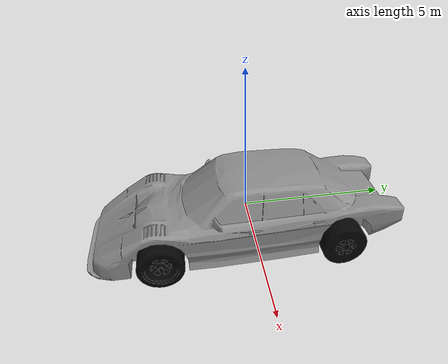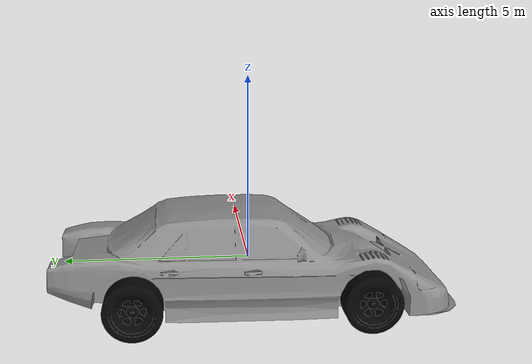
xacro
<?xml version="1.0"?>
<robot xmlns:xacro="http://ros.org/wiki/xacro" name="car">

  <!-- ============== PARAMETRI ============== -->
  <!-- Percorsi mesh (modifica questi) -->
  <xacro:property name="pkg_share" value="$(find msauber)"/>
  <xacro:property name="body_mesh"  value="${pkg_share}/description/meshes/msauber_body.stl"/>
  <xacro:property name="wheel_mesh" value="${pkg_share}/description/meshes/msauber_wheeel.stl"/>

  <!-- Scale mesh (se serve) -->
  <xacro:property name="body_scale"  value="1 1 1"/>
  <xacro:property name="wheel_scale" value="1 1 1"/>

  <!-- Geometria base (modifica questi) -->
  <!-- wheelbase = distanza tra asse anteriore e posteriore -->
  <xacro:property name="wheelbase" value="6.2"/>
  <!-- track = distanza tra ruota sinistra e destra -->
  <xacro:property name="track" value="3.5"/>
  <!-- quota centro ruota (rispetto al base_link) -->
  <xacro:property name="wheel_z" value="-0.7"/>

  <!-- opzionale: massa (placeholder) -->
  <xacro:property name="body_mass"  value="500"/>
  <xacro:property name="wheel_mass" value="25"/>

  <!-- Materiali base -->
  <material name="body_gray">
    <color rgba="0.55 0.55 0.55 1"/>
  </material>
  <material name="wheel_black">
    <color rgba="0.02 0.02 0.02 1"/>
  </material>

  <!-- ============== LINK PRINCIPALE ============== -->
  <link name="base_link">
    <visual>
      <origin xyz="0 0 0" rpy="0 0 0"/>
      <geometry>
        <mesh filename="${body_mesh}" scale="${body_scale}"/>
      </geometry>
      <material name="body_gray"/>
    </visual>

    <!-- collision: puoi usare la mesh o una shape semplice -->
    <collision>
      <origin xyz="0 0 0" rpy="0 0 0"/>
      <geometry>
        <mesh filename="${body_mesh}" scale="${body_scale}"/>
      </geometry>
    </collision>

    <!-- inertial placeholder (meglio sostituirlo con valori reali) -->
    <inertial>
      <origin xyz="0 0 0" rpy="0 0 0"/>
      <mass value="${body_mass}"/>
      <inertia ixx="0.10" ixy="0.0" ixz="0.0" iyy="0.10" iyz="0.0" izz="0.10"/>
    </inertial>
  </link>

  <!-- ============== MACRO RUOTA (link + visual/collision/inertial) ============== -->
  <xacro:macro name="wheel_link" params="name">
    <link name="${name}">
      <visual>
        <origin xyz="0 0 0" rpy="0 0 0"/>
        <geometry>
          <mesh filename="${wheel_mesh}" scale="${wheel_scale}"/>
        </geometry>
        <material name="wheel_black"/>
      </visual>

      <collision>
        <origin xyz="0 0 0" rpy="0 0 0"/>
        <geometry>
          <mesh filename="${wheel_mesh}" scale="${wheel_scale}"/>
        </geometry>
      </collision>

      <inertial>
        <origin xyz="0 0 0" rpy="0 0 0"/>
        <mass value="${wheel_mass}"/>
        <inertia ixx="0.001" ixy="0.0" ixz="0.0" iyy="0.001" iyz="0.0" izz="0.001"/>
      </inertial>
    </link>
  </xacro:macro>

  <!-- ============== RUOTE POSTERIORI (solo spin) ============== -->
  <xacro:wheel_link name="rear_right_wheel"/>
  <joint name="rear_right_wheel_spin" type="continuous">
    <parent link="base_link"/>
    <child link="rear_right_wheel"/>
    <!-- centro ruota: x=-wheelbase/2, y=+track/2 -->
    <origin xyz="${-track/2} ${ wheelbase/2} ${wheel_z}" rpy="0 0 3.14"/>
    <!-- asse spin: cambia se il tuo modello ruota su un altro asse -->
    <axis xyz="1 0 0"/>
  </joint>

  <xacro:wheel_link name="rear_left_wheel"/>
  <joint name="rear_left_wheel_spin" type="continuous">
    <parent link="base_link"/>
    <child link="rear_left_wheel"/>
    <origin xyz="${ track/2} ${ wheelbase/2} ${wheel_z}" rpy="0 0 3.14"/>
    <axis xyz="1 0 0"/>
  </joint>

  <!-- ============== RUOTE ANTERIORI (sterzo + spin) ============== -->
  <!-- Link “intermedio” per lo sterzo: aggiungo un'inerzia minima così Gazebo non scarta il link -->
  <link name="front_right_steer_link">
    <inertial>
      <origin xyz="0 0 0" rpy="0 0 0"/>
      <mass value="0.001"/>
      <inertia ixx="1e-5" ixy="0" ixz="0" iyy="1e-5" iyz="0" izz="1e-5"/>
    </inertial>
  </link>
  <joint name="front_right_steer" type="revolute">
    <parent link="base_link"/>
    <child link="front_right_steer_link"/>
    <!-- centro ruota: x=+wheelbase/2, y=+track/2 -->
    <origin xyz="${-track/2} ${-wheelbase/2} ${wheel_z}" rpy="0 0 3.14"/>
    <!-- sterzo attorno a Z (come hai chiesto) -->
    <axis xyz="0 0 1"/>
    <!-- limiti sterzo (modifica a piacere) -->
    <limit lower="-0.7" upper="0.7" effort="5" velocity="3"/>
  </joint>

  <xacro:wheel_link name="front_right_wheel"/>
  <joint name="front_right_wheel_spin" type="continuous">
    <parent link="front_right_steer_link"/>
    <child link="front_right_wheel"/>
    <!-- qui l’origine è 0 perché il pivot è già nel centro ruota -->
    <origin xyz="0 0 0" rpy="0 0 0"/>
    <axis xyz="1 0 0"/>
  </joint>

  <link name="front_left_steer_link">
    <inertial>
      <origin xyz="0 0 0" rpy="0 0 0"/>
      <mass value="0.001"/>
      <inertia ixx="1e-5" ixy="0" ixz="0" iyy="1e-5" iyz="0" izz="1e-5"/>
    </inertial>
  </link>
  <joint name="front_left_steer" type="revolute">
    <parent link="base_link"/>
    <child link="front_left_steer_link"/>
    <origin xyz="${ track/2} ${-wheelbase/2} ${wheel_z}" rpy="0 0 0"/>
    <axis xyz="0 0 1"/>
    <limit lower="-0.7" upper="0.7" effort="5" velocity="3"/>
  </joint>

  <xacro:wheel_link name="front_left_wheel"/>
  <joint name="front_left_wheel_spin" type="continuous">
    <parent link="front_left_steer_link"/>
    <child link="front_left_wheel"/>
    <origin xyz="0 0 0" rpy="0 0 0"/>
    <axis xyz="1 0 0"/>
  </joint>

</robot>
